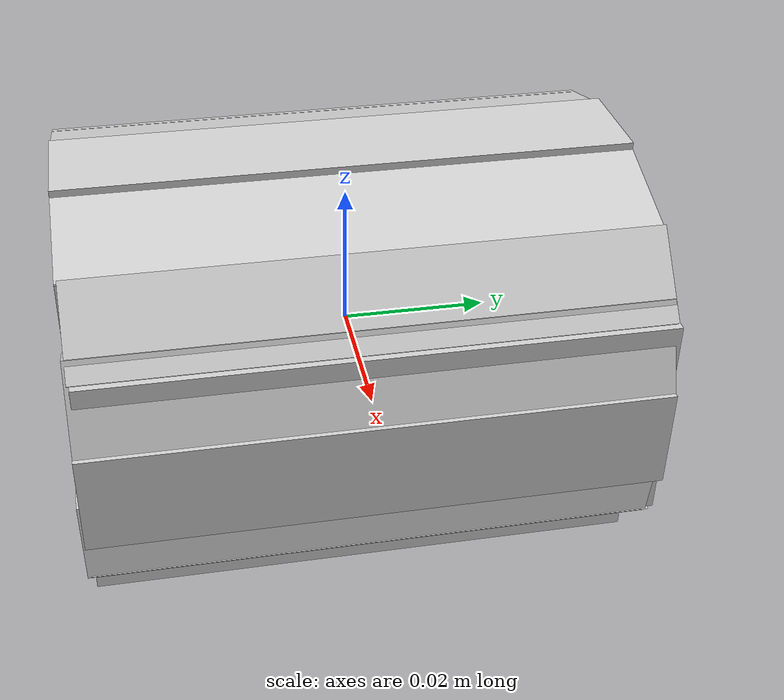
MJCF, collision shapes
<mujoco model="textured">
  <asset>
  <texture file="texture_map.png" name="tex-textured" type="2d" />
  <material name="textured" reflectance="0.5" texrepeat="1 1" texture="tex-textured" texuniform="false" />
  <mesh file="visual/textured_vis.msh" name="textured_vis" scale="0.01 0.01 0.01" /></asset>
  <worldbody>
    <body>
      <body name="object">
      <geom solimp="0.998 0.998 0.001" solref="0.001 1" density="100" friction="0.95 0.3 0.1" type="mesh" mesh="textured_vis" conaffinity="0" contype="0" group="1" material="textured" /><geom solimp="0.998 0.998 0.001" solref="0.001 1" density="100" friction="0.95 0.3 0.1" type="box" pos="0.00000 -0.00104 -0.00235" quat="0.50000 -0.50000 0.50000 0.50000" size="0.01874 0.02352 0.03625" group="0" rgba="0.8 0.8 0.8 0.3" /><geom solimp="0.998 0.998 0.001" solref="0.001 1" density="100" friction="0.95 0.3 0.1" type="box" pos="0.02595 -0.00000 -0.00209" quat="0.70711 0.70711 0.00000 -0.00000" size="0.00226 0.01471 0.03760" group="0" rgba="0.8 0.8 0.8 0.3" /><geom solimp="0.998 0.998 0.001" solref="0.001 1" density="100" friction="0.95 0.3 0.1" type="box" pos="-0.02470 -0.00060 -0.00209" quat="0.70711 0.70711 0.00000 -0.00000" size="0.00226 0.01662 0.03760" group="0" rgba="0.8 0.8 0.8 0.3" /><geom solimp="0.998 0.998 0.001" solref="0.001 1" density="100" friction="0.95 0.3 0.1" type="box" pos="-0.00012 -0.00060 -0.02325" quat="0.50000 -0.50000 0.50000 0.50000" size="0.00421 0.01985 0.03760" group="0" rgba="0.8 0.8 0.8 0.3" /><geom solimp="0.998 0.998 0.001" solref="0.001 1" density="100" friction="0.95 0.3 0.1" type="box" pos="-0.00012 -0.00060 0.01776" quat="0.50000 -0.50000 0.50000 0.50000" size="0.00421 0.01985 0.03760" group="0" rgba="0.8 0.8 0.8 0.3" /><geom solimp="0.998 0.998 0.001" solref="0.001 1" density="100" friction="0.95 0.3 0.1" type="box" pos="-0.00012 -0.00060 -0.03162" quat="0.50000 0.50000 0.50000 -0.50000" size="0.00177 0.00694 0.03760" group="0" rgba="0.8 0.8 0.8 0.3" /><geom solimp="0.998 0.998 0.001" solref="0.001 1" density="100" friction="0.95 0.3 0.1" type="box" pos="-0.00012 -0.00060 0.02575" quat="0.50000 0.50000 0.50000 -0.50000" size="0.00177 0.00694 0.03760" group="0" rgba="0.8 0.8 0.8 0.3" /><geom solimp="0.998 0.998 0.001" solref="0.001 1" density="100" friction="0.95 0.3 0.1" type="box" pos="-0.02944 -0.00060 -0.00291" quat="0.00030 0.00030 -0.70711 0.70711" size="0.00177 0.00694 0.03760" group="0" rgba="0.8 0.8 0.8 0.3" /><geom solimp="0.998 0.998 0.001" solref="0.001 1" density="100" friction="0.95 0.3 0.1" type="box" pos="0.02920 -0.00060 -0.00286" quat="0.70711 0.70711 0.00030 -0.00030" size="0.00177 0.00694 0.03760" group="0" rgba="0.8 0.8 0.8 0.3" /><geom solimp="0.998 0.998 0.001" solref="0.001 1" density="100" friction="0.95 0.3 0.1" type="box" pos="0.02685 -0.00060 0.00853" quat="0.12141 -0.12141 0.69661 0.69661" size="0.00177 0.00694 0.03760" group="0" rgba="0.8 0.8 0.8 0.3" /><geom solimp="0.998 0.998 0.001" solref="0.001 1" density="100" friction="0.95 0.3 0.1" type="box" pos="-0.02626 -0.00060 -0.01619" quat="0.68638 0.68638 -0.16993 0.16993" size="0.00177 0.00694 0.03760" group="0" rgba="0.8 0.8 0.8 0.3" /><geom solimp="0.998 0.998 0.001" solref="0.001 1" density="100" friction="0.95 0.3 0.1" type="box" pos="-0.01937 -0.00060 -0.02393" quat="0.30330 -0.30330 0.63875 0.63875" size="0.00177 0.00694 0.03760" group="0" rgba="0.8 0.8 0.8 0.3" /><geom solimp="0.998 0.998 0.001" solref="0.001 1" density="100" friction="0.95 0.3 0.1" type="box" pos="-0.00969 -0.00060 -0.03023" quat="0.41278 -0.41278 0.57412 0.57412" size="0.00177 0.00694 0.03760" group="0" rgba="0.8 0.8 0.8 0.3" /><geom solimp="0.998 0.998 0.001" solref="0.001 1" density="100" friction="0.95 0.3 0.1" type="box" pos="0.01270 -0.00060 0.02274" quat="0.41278 -0.41278 0.57412 0.57412" size="0.00177 0.00694 0.03760" group="0" rgba="0.8 0.8 0.8 0.3" /><geom solimp="0.998 0.998 0.001" solref="0.001 1" density="100" friction="0.95 0.3 0.1" type="box" pos="0.01240 -0.00060 -0.02883" quat="0.60318 0.60318 0.36902 -0.36902" size="0.00177 0.00694 0.03760" group="0" rgba="0.8 0.8 0.8 0.3" /><geom solimp="0.998 0.998 0.001" solref="0.001 1" density="100" friction="0.95 0.3 0.1" type="box" pos="0.02211 -0.00060 -0.02076" quat="0.65137 0.65137 0.27516 -0.27516" size="0.00177 0.00694 0.03760" group="0" rgba="0.8 0.8 0.8 0.3" /><geom solimp="0.998 0.998 0.001" solref="0.001 1" density="100" friction="0.95 0.3 0.1" type="box" pos="0.02745 -0.00099 -0.01027" quat="0.05205 0.05205 -0.70519 0.70519" size="0.00177 0.00694 0.03760" group="0" rgba="0.8 0.8 0.8 0.3" /><geom solimp="0.998 0.998 0.001" solref="0.001 1" density="100" friction="0.95 0.3 0.1" type="box" pos="-0.02700 -0.00060 0.00886" quat="0.69496 0.69496 0.13049 -0.13049" size="0.00177 0.00694 0.03760" group="0" rgba="0.8 0.8 0.8 0.3" /><geom solimp="0.998 0.998 0.001" solref="0.001 1" density="100" friction="0.95 0.3 0.1" type="box" pos="-0.02005 -0.00060 0.01808" quat="0.65572 0.65572 0.26463 -0.26463" size="0.00177 0.00694 0.03760" group="0" rgba="0.8 0.8 0.8 0.3" /><geom solimp="0.998 0.998 0.001" solref="0.001 1" density="100" friction="0.95 0.3 0.1" type="box" pos="-0.01084 -0.00060 0.02397" quat="0.56204 -0.56204 0.42908 0.42908" size="0.00177 0.00694 0.03760" group="0" rgba="0.8 0.8 0.8 0.3" /><geom solimp="0.998 0.998 0.001" solref="0.001 1" density="100" friction="0.95 0.3 0.1" type="box" pos="0.02211 -0.00060 -0.02076" quat="0.65137 0.65137 0.27516 -0.27516" size="0.00177 0.00694 0.03760" group="0" rgba="0.8 0.8 0.8 0.3" /><geom solimp="0.998 0.998 0.001" solref="0.001 1" density="100" friction="0.95 0.3 0.1" type="box" pos="0.01270 -0.00060 0.02274" quat="0.41278 -0.41278 0.57412 0.57412" size="0.00177 0.00694 0.03760" group="0" rgba="0.8 0.8 0.8 0.3" /><geom solimp="0.998 0.998 0.001" solref="0.001 1" density="100" friction="0.95 0.3 0.1" type="box" pos="0.02305 -0.00037 0.01722" quat="0.66333 0.66333 -0.24494 0.24494" size="0.00110 0.00624 0.03750" group="0" rgba="0.8 0.8 0.8 0.3" /><geom solimp="0.998 0.998 0.001" solref="0.001 1" density="100" friction="0.95 0.3 0.1" type="box" pos="0.02305 -0.00037 0.01722" quat="0.66333 0.66333 -0.24494 0.24494" size="0.00110 0.00624 0.03750" group="0" rgba="0.8 0.8 0.8 0.3" /></body>
      <site rgba="0 0 0 0" size="0.005" pos="0 0 -0.06" name="bottom_site" />
      <site rgba="0 0 0 0" size="0.005" pos="0 0 0.04" name="top_site" />
      <site rgba="0 0 0 0" size="0.005" pos="0.025 0.025 0" name="horizontal_radius_site" />
    </body>
  </worldbody>
</mujoco>
